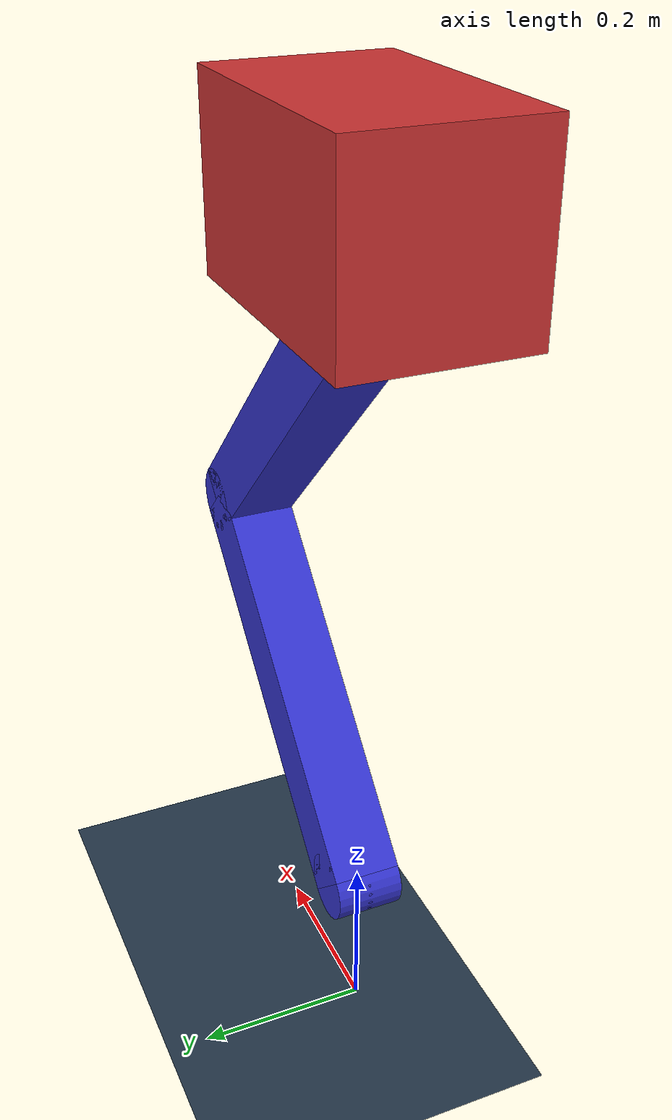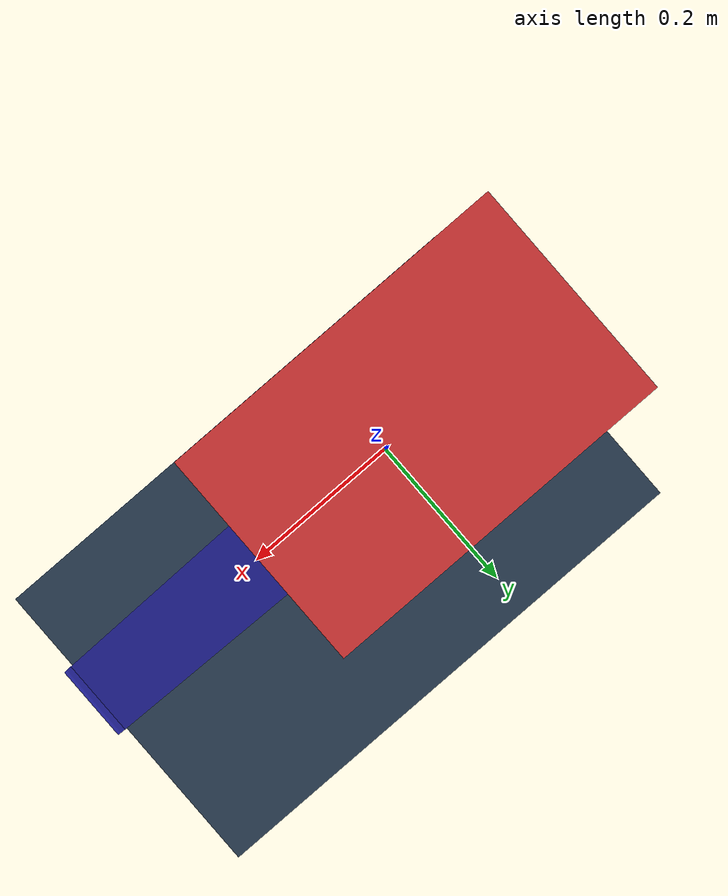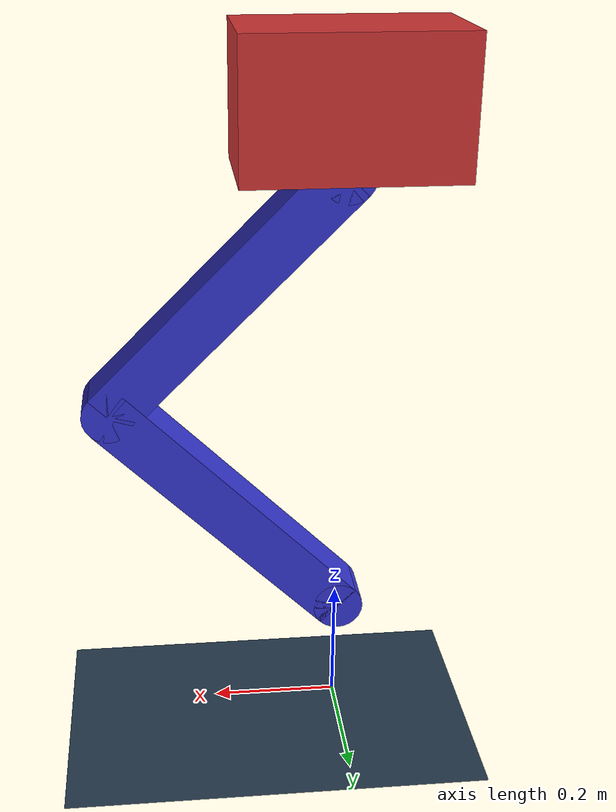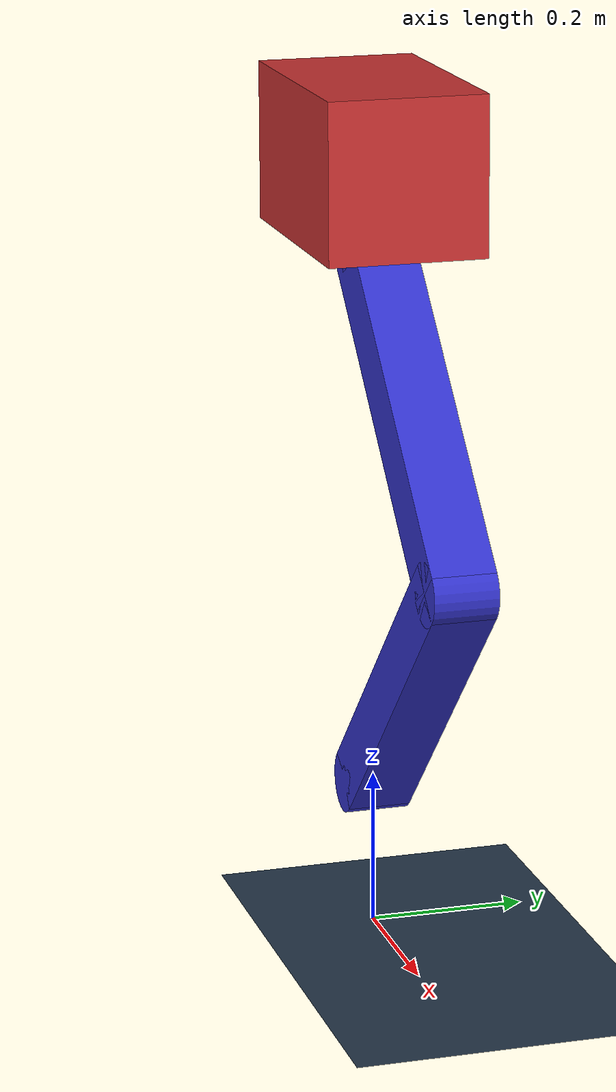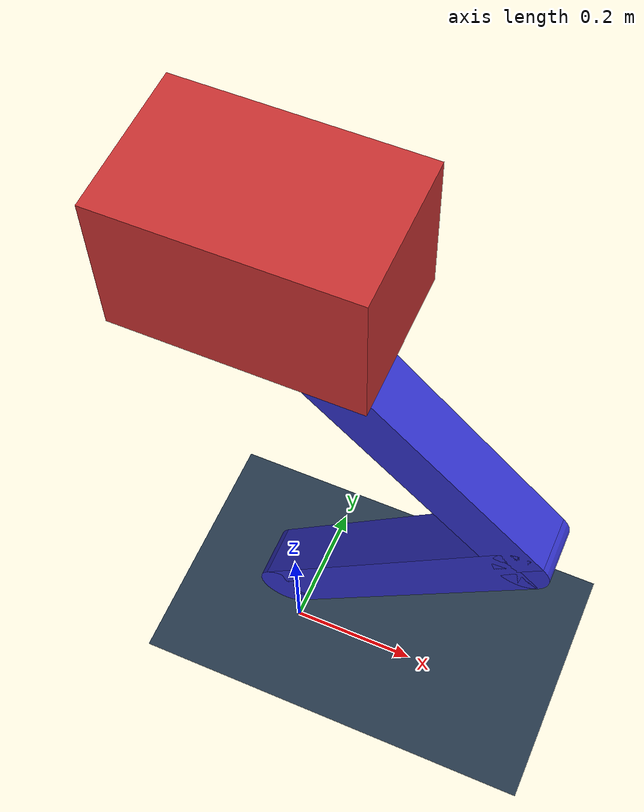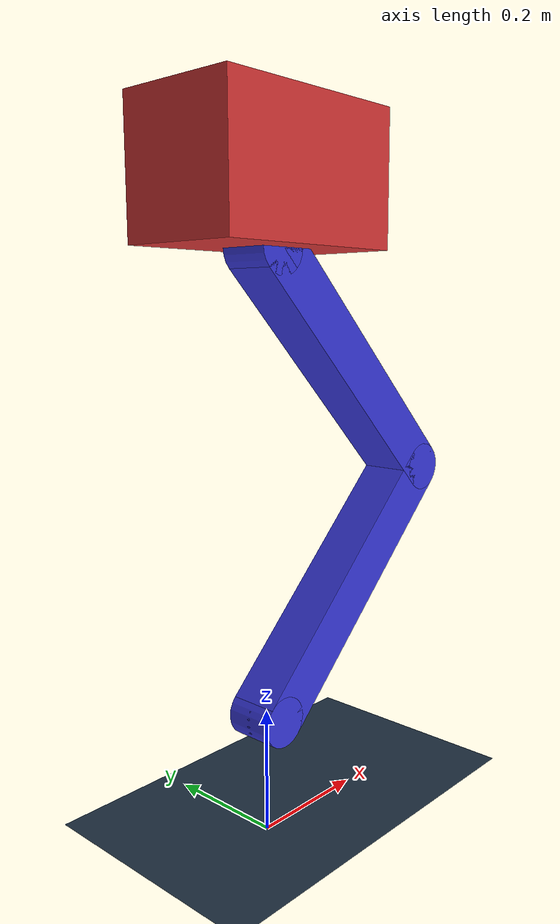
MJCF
<mujoco model="two_link_hopper">

    <compiler angle="degree"/>
    <option timestep="0.002" gravity="0 0 -9.81"/>

    <visual>
        <quality shadowsize="2048"/>
        <map znear="0.01"/>
    </visual>

    <asset>

        <!-- Sky -->
        <texture name="skybox"
                 type="skybox"
                 builtin="gradient"
                 rgb1="0.3 0.5 0.8"
                 rgb2="0.9 0.9 1"
                 width="512"
                 height="512"/>

        <!-- Checker ground -->
        <texture name="ground_tex"
                 type="2d"
                 builtin="checker"
                 rgb1="0.2 0.3 0.4"
                 rgb2="0.1 0.15 0.2"
                 width="512"
                 height="512"/>

        <material name="ground_mat"
                  texture="ground_tex"
                  texrepeat="20 20"
                  reflectance="0.1"/>

    </asset>

    <default>
        <joint damping="1"/>
        <geom density="3000" friction="1 0.1 0.1"/>
    </default>

    <worldbody>

        <!-- Directional light -->
        <light name="sun"
               pos="0 0 6"
               dir="0 0 -1"
               directional="true"
               diffuse="1 1 1"
               specular="0.2 0.2 0.2"
               castshadow="true"/>

        <!-- Ground -->
        <geom name="ground"
              type="plane"
              size="10 10 0.1"
              material="ground_mat"/>

        <!-- Base (twice bigger) -->
        <body name="base" pos="0 0 1">

            <!-- Horizontal motion -->
            <joint name="x_slide"
                  type="slide"
                  axis="1 0 0"/>

            <!-- Vertical motion -->
            <joint name="z_slide"
                  type="slide"
                  axis="0 0 1"/>

            <geom type="box"
                  size="0.16 0.10 0.10"
                  rgba="0.8 0.2 0.2 1"/>

            <!-- Hip revolute cylinder -->
            <geom type="cylinder"
                  size="0.04 0.04"
                  pos="0 0 -0.10"
                  quat="0.707 0.707 0 0"
                  rgba="0.2 0.2 0.8 1"/>

            <!-- THIGH -->
            <body name="thigh"
                  pos="0 0 -0.10"
                  euler="0 -45 0">

                <joint name="hip"
                       type="hinge"
                       axis="0 1 0"/>

                <!-- Link -->
                <geom type="box"
                      size="0.04 0.04 0.25"
                      pos="0 0 -0.25"
                      rgba="0.2 0.2 0.8 1"/>

                <!-- Upper joint -->
                <geom type="cylinder"
                      size="0.04 0.04"
                      pos="0 0 0"
                      quat="0.707 0.707 0 0"
                      rgba="0.2 0.2 0.8 1"/>

                <!-- Lower joint -->
                <geom type="cylinder"
                      size="0.04 0.04"
                      pos="0 0 -0.5"
                      quat="0.707 0.707 0 0"
                      rgba="0.2 0.2 0.8 1"/>

                <!-- SHIN -->
                <body name="shin"
                      pos="0 0 -0.5"
                      euler="0 90 0">

                    <joint name="knee"
                           type="hinge"
                           axis="0 1 0"/>

                    <!-- Link -->
                    <geom type="box"
                          size="0.04 0.04 0.25"
                          pos="0 0 -0.25"
                          rgba="0.2 0.2 0.8 1"/>

                    <!-- Upper joint -->
                    <geom type="cylinder"
                          size="0.04 0.04"
                          pos="0 0 0"
                          quat="0.707 0.707 0 0"
                          rgba="0.2 0.2 0.8 1"/>

                    <!-- Lower joint -->
                    <geom type="cylinder"
                          size="0.04 0.04"
                          pos="0 0 -0.5"
                          quat="0.707 0.707 0 0"
                          rgba="0.2 0.2 0.8 1"/>

                    <!-- Contact point -->
                    <geom name="foot"
                          type="sphere"
                          pos="0 0 -0.5"
                          size="0.04"
                          friction="2 0.1 0.1"
                          rgba="0.2 0.2 0.8 1"/>

                </body>
            </body>

        </body>

    </worldbody>

    <actuator>
        <motor joint="hip" gear="10"/>
        <motor joint="knee" gear="10"/>
    </actuator>

</mujoco>
